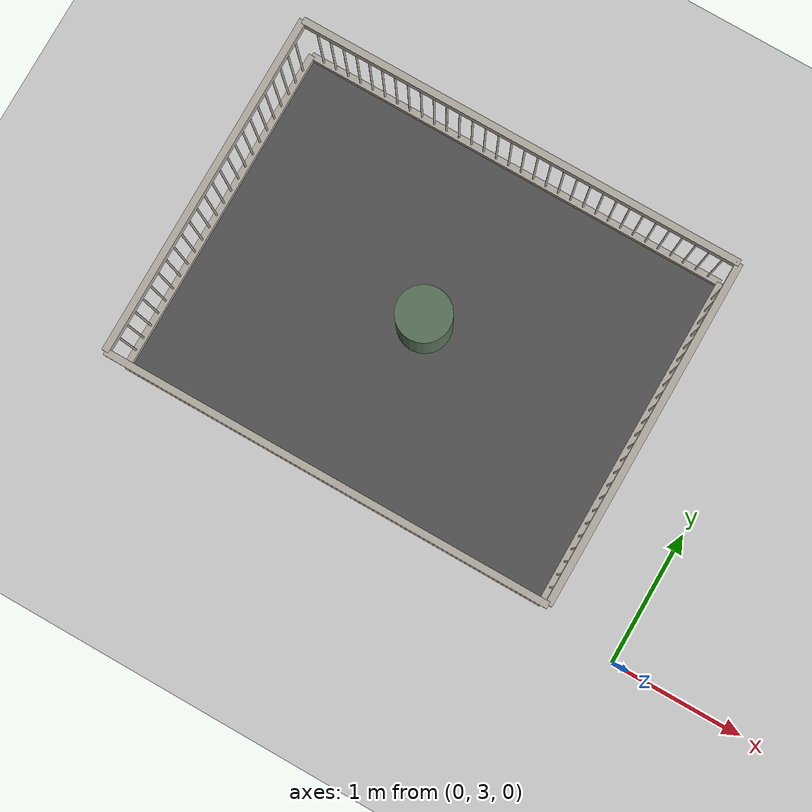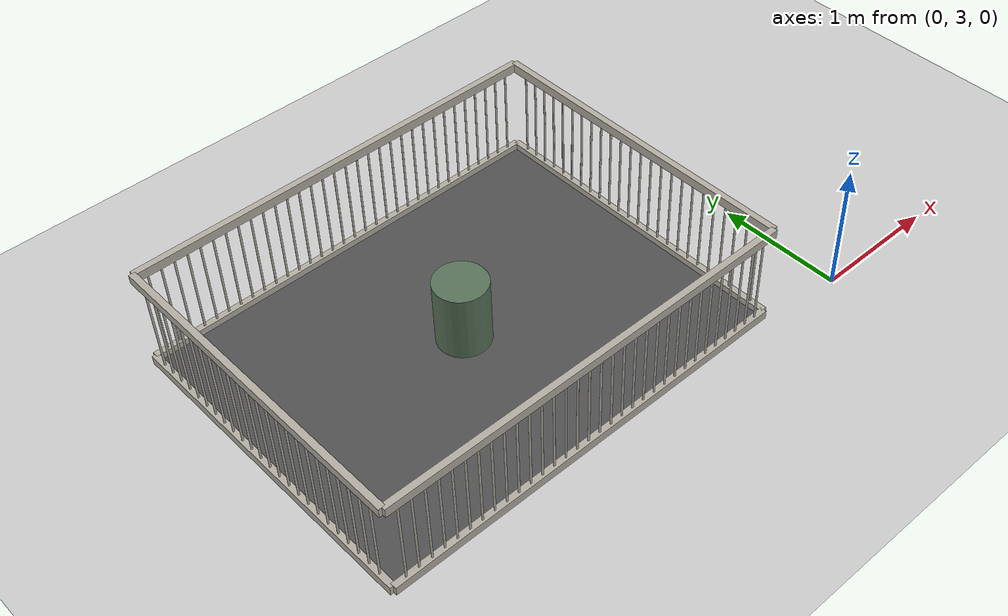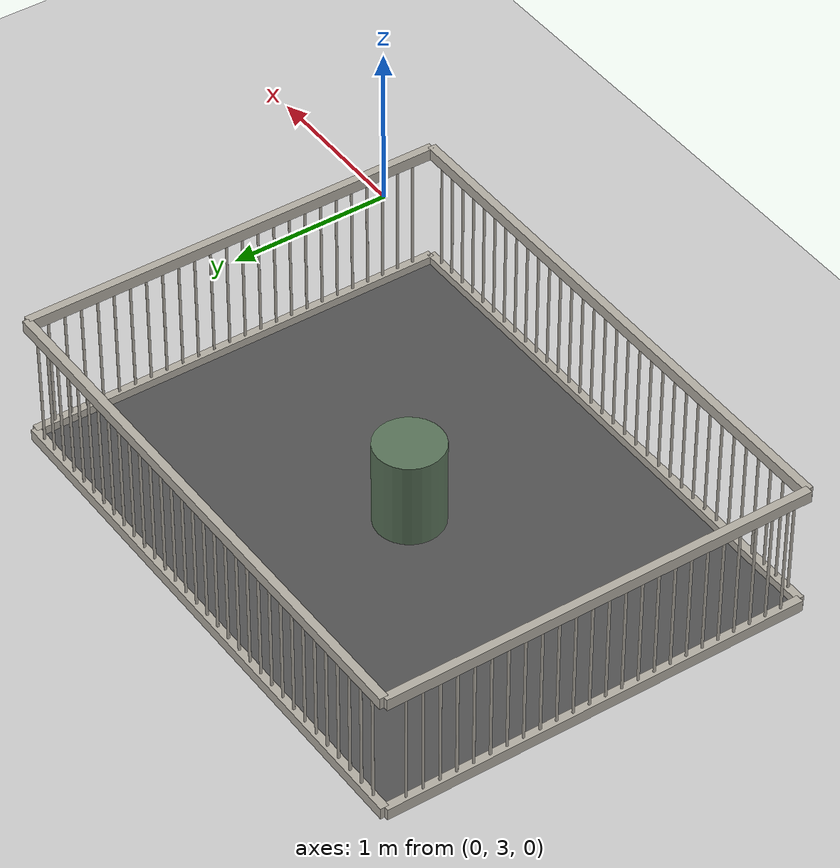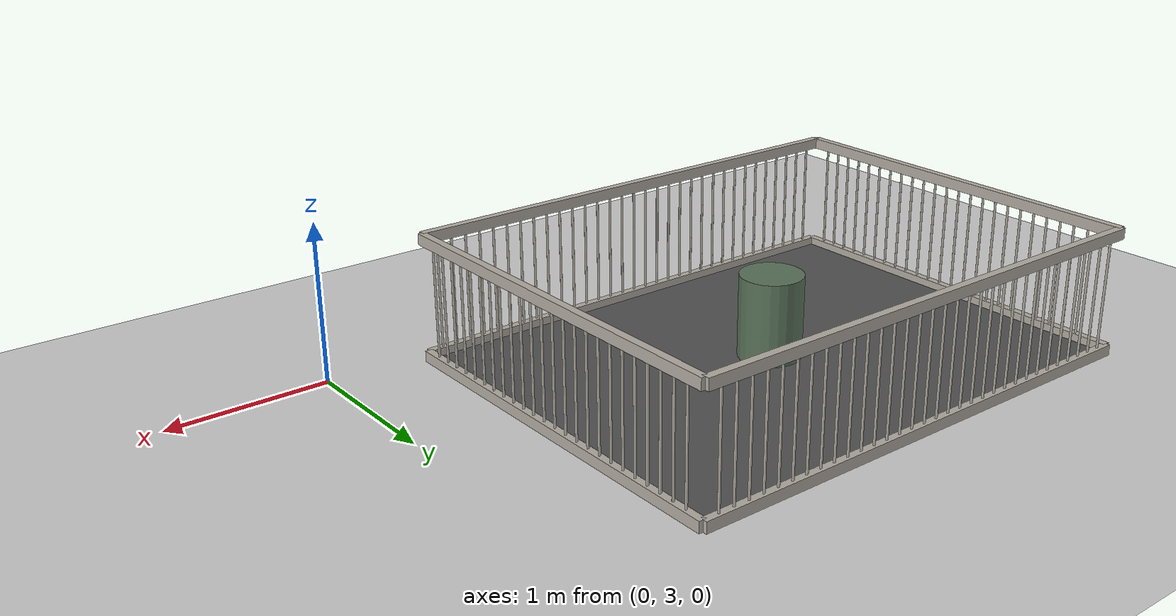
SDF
<sdf version="1.9">
 <world name="pig_pen_16units_world">
  <model name="ground_plane">
   <static>true</static>
   <link name="link">
    <collision name="collision">
     <geometry><plane><normal>0 0 1</normal><size>30 30</size></plane></geometry>
     <surface><friction><ode><mu>1.0</mu><mu2>1.0</mu2></ode></friction></surface>
    </collision>
    <visual name="visual">
     <geometry><plane><normal>0 0 1</normal><size>30 30</size></plane></geometry>
     <material>
      <ambient>0.8 0.8 0.8 1</ambient>
      <diffuse>0.8 0.8 0.8 1</diffuse>
      <specular>0.2 0.2 0.2 1</specular>
     </material>
    </visual>
   </link>
  </model>
  <model name="pen5">
   <pose>-2.275 4.385 0 0 0 0</pose>
   <static>true</static>
   <link name="floor">
    <pose>0 0 0.01 0 0 0</pose>
    <collision name="collision"><geometry><box><size>3.30 2.55 0.02</size></box></geometry></collision>
    <visual name="visual">
     <geometry><box><size>3.30 2.55 0.02</size></box></geometry>
     <material>
      <ambient>0.25 0.25 0.25 1</ambient>
      <diffuse>0.32 0.32 0.32 1</diffuse>
      <specular>0.05 0.05 0.05 1</specular>
     </material>
    </visual>
   </link>
   <link name="left_wall">
    <pose>0 1.275 0.415 0 0 0</pose>
    <collision name="top_rail_col">
     <pose>0 0 0.38 0 0 0</pose>
     <geometry><box><size>3.30 0.05 0.07</size></box></geometry>
    </collision>
    <visual name="top_rail_vis">
     <pose>0 0 0.38 0 0 0</pose>
     <geometry><box><size>3.30 0.05 0.07</size></box></geometry>
     <material><ambient>0.70 0.68 0.64 1</ambient><diffuse>0.70 0.68 0.64 1</diffuse></material>
    </visual>
    <collision name="bottom_rail_col">
     <pose>0 0 -0.38 0 0 0</pose>
     <geometry><box><size>3.30 0.05 0.07</size></box></geometry>
    </collision>
    <visual name="bottom_rail_vis">
     <pose>0 0 -0.38 0 0 0</pose>
     <geometry><box><size>3.30 0.05 0.07</size></box></geometry>
     <material><ambient>0.70 0.68 0.64 1</ambient><diffuse>0.70 0.68 0.64 1</diffuse></material>
    </visual>
    <collision name="bar_01_col">
     <pose>-1.55 0 0 0 0 0</pose>
     <geometry><cylinder><radius>0.0075</radius><length>0.69</length></cylinder></geometry>
    </collision>
    <visual name="bar_01_vis">
     <pose>-1.55 0 0 0 0 0</pose>
     <geometry><cylinder><radius>0.0075</radius><length>0.69</length></cylinder></geometry>
     <material><ambient>0.70 0.68 0.64 1</ambient><diffuse>0.70 0.68 0.64 1</diffuse></material>
    </visual>
    <collision name="bar_02_col">
     <pose>-1.45 0 0 0 0 0</pose>
     <geometry><cylinder><radius>0.0075</radius><length>0.69</length></cylinder></geometry>
    </collision>
    <visual name="bar_02_vis">
     <pose>-1.45 0 0 0 0 0</pose>
     <geometry><cylinder><radius>0.0075</radius><length>0.69</length></cylinder></geometry>
     <material><ambient>0.70 0.68 0.64 1</ambient><diffuse>0.70 0.68 0.64 1</diffuse></material>
    </visual>
    <collision name="bar_03_col">
     <pose>-1.35 0 0 0 0 0</pose>
     <geometry><cylinder><radius>0.0075</radius><length>0.69</length></cylinder></geometry>
    </collision>
    <visual name="bar_03_vis">
     <pose>-1.35 0 0 0 0 0</pose>
     <geometry><cylinder><radius>0.0075</radius><length>0.69</length></cylinder></geometry>
     <material><ambient>0.70 0.68 0.64 1</ambient><diffuse>0.70 0.68 0.64 1</diffuse></material>
    </visual>
    <collision name="bar_04_col">
     <pose>-1.25 0 0 0 0 0</pose>
     <geometry><cylinder><radius>0.0075</radius><length>0.69</length></cylinder></geometry>
    </collision>
    <visual name="bar_04_vis">
     <pose>-1.25 0 0 0 0 0</pose>
     <geometry><cylinder><radius>0.0075</radius><length>0.69</length></cylinder></geometry>
     <material><ambient>0.70 0.68 0.64 1</ambient><diffuse>0.70 0.68 0.64 1</diffuse></material>
    </visual>
    <collision name="bar_05_col">
     <pose>-1.15 0 0 0 0 0</pose>
     <geometry><cylinder><radius>0.0075</radius><length>0.69</length></cylinder></geometry>
    </collision>
    <visual name="bar_05_vis">
     <pose>-1.15 0 0 0 0 0</pose>
     <geometry><cylinder><radius>0.0075</radius><length>0.69</length></cylinder></geometry>
     <material><ambient>0.70 0.68 0.64 1</ambient><diffuse>0.70 0.68 0.64 1</diffuse></material>
    </visual>
    <collision name="bar_06_col">
     <pose>-1.05 0 0 0 0 0</pose>
     <geometry><cylinder><radius>0.0075</radius><length>0.69</length></cylinder></geometry>
    </collision>
    <visual name="bar_06_vis">
     <pose>-1.05 0 0 0 0 0</pose>
     <geometry><cylinder><radius>0.0075</radius><length>0.69</length></cylinder></geometry>
     <material><ambient>0.70 0.68 0.64 1</ambient><diffuse>0.70 0.68 0.64 1</diffuse></material>
    </visual>
    <collision name="bar_07_col">
     <pose>-0.95 0 0 0 0 0</pose>
     <geometry><cylinder><radius>0.0075</radius><length>0.69</length></cylinder></geometry>
    </collision>
    <visual name="bar_07_vis">
     <pose>-0.95 0 0 0 0 0</pose>
     <geometry><cylinder><radius>0.0075</radius><length>0.69</length></cylinder></geometry>
     <material><ambient>0.70 0.68 0.64 1</ambient><diffuse>0.70 0.68 0.64 1</diffuse></material>
    </visual>
    <collision name="bar_08_col">
     <pose>-0.85 0 0 0 0 0</pose>
     <geometry><cylinder><radius>0.0075</radius><length>0.69</length></cylinder></geometry>
    </collision>
    <visual name="bar_08_vis">
     <pose>-0.85 0 0 0 0 0</pose>
     <geometry><cylinder><radius>0.0075</radius><length>0.69</length></cylinder></geometry>
     <material><ambient>0.70 0.68 0.64 1</ambient><diffuse>0.70 0.68 0.64 1</diffuse></material>
    </visual>
    <collision name="bar_09_col">
     <pose>-0.75 0 0 0 0 0</pose>
     <geometry><cylinder><radius>0.0075</radius><length>0.69</length></cylinder></geometry>
    </collision>
    <visual name="bar_09_vis">
     <pose>-0.75 0 0 0 0 0</pose>
     <geometry><cylinder><radius>0.0075</radius><length>0.69</length></cylinder></geometry>
     <material><ambient>0.70 0.68 0.64 1</ambient><diffuse>0.70 0.68 0.64 1</diffuse></material>
    </visual>
    <collision name="bar_10_col">
     <pose>-0.65 0 0 0 0 0</pose>
     <geometry><cylinder><radius>0.0075</radius><length>0.69</length></cylinder></geometry>
    </collision>
    <visual name="bar_10_vis">
     <pose>-0.65 0 0 0 0 0</pose>
     <geometry><cylinder><radius>0.0075</radius><length>0.69</length></cylinder></geometry>
     <material><ambient>0.70 0.68 0.64 1</ambient><diffuse>0.70 0.68 0.64 1</diffuse></material>
    </visual>
    <collision name="bar_11_col">
     <pose>-0.55 0 0 0 0 0</pose>
     <geometry><cylinder><radius>0.0075</radius><length>0.69</length></cylinder></geometry>
    </collision>
    <visual name="bar_11_vis">
     <pose>-0.55 0 0 0 0 0</pose>
     <geometry><cylinder><radius>0.0075</radius><length>0.69</length></cylinder></geometry>
     <material><ambient>0.70 0.68 0.64 1</ambient><diffuse>0.70 0.68 0.64 1</diffuse></material>
    </visual>
    <collision name="bar_12_col">
     <pose>-0.45 0 0 0 0 0</pose>
     <geometry><cylinder><radius>0.0075</radius><length>0.69</length></cylinder></geometry>
    </collision>
    <visual name="bar_12_vis">
     <pose>-0.45 0 0 0 0 0</pose>
     <geometry><cylinder><radius>0.0075</radius><length>0.69</length></cylinder></geometry>
     <material><ambient>0.70 0.68 0.64 1</ambient><diffuse>0.70 0.68 0.64 1</diffuse></material>
    </visual>
    <collision name="bar_13_col">
     <pose>-0.35 0 0 0 0 0</pose>
     <geometry><cylinder><radius>0.0075</radius><length>0.69</length></cylinder></geometry>
    </collision>
    <visual name="bar_13_vis">
     <pose>-0.35 0 0 0 0 0</pose>
     <geometry><cylinder><radius>0.0075</radius><length>0.69</length></cylinder></geometry>
     <material><ambient>0.70 0.68 0.64 1</ambient><diffuse>0.70 0.68 0.64 1</diffuse></material>
    </visual>
    <collision name="bar_14_col">
     <pose>-0.25 0 0 0 0 0</pose>
     <geometry><cylinder><radius>0.0075</radius><length>0.69</length></cylinder></geometry>
    </collision>
    <visual name="bar_14_vis">
     <pose>-0.25 0 0 0 0 0</pose>
     <geometry><cylinder><radius>0.0075</radius><length>0.69</length></cylinder></geometry>
     <material><ambient>0.70 0.68 0.64 1</ambient><diffuse>0.70 0.68 0.64 1</diffuse></material>
    </visual>
    <collision name="bar_15_col">
     <pose>-0.15 0 0 0 0 0</pose>
     <geometry><cylinder><radius>0.0075</radius><length>0.69</length></cylinder></geometry>
    </collision>
    <visual name="bar_15_vis">
     <pose>-0.15 0 0 0 0 0</pose>
     <geometry><cylinder><radius>0.0075</radius><length>0.69</length></cylinder></geometry>
     <material><ambient>0.70 0.68 0.64 1</ambient><diffuse>0.70 0.68 0.64 1</diffuse></material>
    </visual>
    <collision name="bar_16_col">
     <pose>-0.05 0 0 0 0 0</pose>
     <geometry><cylinder><radius>0.0075</radius><length>0.69</length></cylinder></geometry>
    </collision>
    <visual name="bar_16_vis">
     <pose>-0.05 0 0 0 0 0</pose>
     <geometry><cylinder><radius>0.0075</radius><length>0.69</length></cylinder></geometry>
     <material><ambient>0.70 0.68 0.64 1</ambient><diffuse>0.70 0.68 0.64 1</diffuse></material>
    </visual>
    <collision name="bar_17_col">
     <pose>0.05 0 0 0 0 0</pose>
     <geometry><cylinder><radius>0.0075</radius><length>0.69</length></cylinder></geometry>
    </collision>
    <visual name="bar_17_vis">
     <pose>0.05 0 0 0 0 0</pose>
     <geometry><cylinder><radius>0.0075</radius><length>0.69</length></cylinder></geometry>
     <material><ambient>0.70 0.68 0.64 1</ambient><diffuse>0.70 0.68 0.64 1</diffuse></material>
    </visual>
    <collision name="bar_18_col">
     <pose>0.15 0 0 0 0 0</pose>
     <geometry><cylinder><radius>0.0075</radius><length>0.69</length></cylinder></geometry>
    </collision>
    <visual name="bar_18_vis">
     <pose>0.15 0 0 0 0 0</pose>
     <geometry><cylinder><radius>0.0075</radius><length>0.69</length></cylinder></geometry>
     <material><ambient>0.70 0.68 0.64 1</ambient><diffuse>0.70 0.68 0.64 1</diffuse></material>
    </visual>
    <collision name="bar_19_col">
     <pose>0.25 0 0 0 0 0</pose>
     <geometry><cylinder><radius>0.0075</radius><length>0.69</length></cylinder></geometry>
    </collision>
    <visual name="bar_19_vis">
     <pose>0.25 0 0 0 0 0</pose>
     <geometry><cylinder><radius>0.0075</radius><length>0.69</length></cylinder></geometry>
     <material><ambient>0.70 0.68 0.64 1</ambient><diffuse>0.70 0.68 0.64 1</diffuse></material>
    </visual>
    <collision name="bar_20_col">
     <pose>0.35 0 0 0 0 0</pose>
     <geometry><cylinder><radius>0.0075</radius><length>0.69</length></cylinder></geometry>
    </collision>
    <visual name="bar_20_vis">
     <pose>0.35 0 0 0 0 0</pose>
     <geometry><cylinder><radius>0.0075</radius><length>0.69</length></cylinder></geometry>
     <material><ambient>0.70 0.68 0.64 1</ambient><diffuse>0.70 0.68 0.64 1</diffuse></material>
    </visual>
    <collision name="bar_21_col">
     <pose>0.45 0 0 0 0 0</pose>
     <geometry><cylinder><radius>0.0075</radius><length>0.69</length></cylinder></geometry>
    </collision>
    <visual name="bar_21_vis">
     <pose>0.45 0 0 0 0 0</pose>
     <geometry><cylinder><radius>0.0075</radius><length>0.69</length></cylinder></geometry>
     <material><ambient>0.70 0.68 0.64 1</ambient><diffuse>0.70 0.68 0.64 1</diffuse></material>
    </visual>
    <collision name="bar_22_col">
     <pose>0.55 0 0 0 0 0</pose>
     <geometry><cylinder><radius>0.0075</radius><length>0.69</length></cylinder></geometry>
    </collision>
    <visual name="bar_22_vis">
     <pose>0.55 0 0 0 0 0</pose>
     <geometry><cylinder><radius>0.0075</radius><length>0.69</length></cylinder></geometry>
     <material><ambient>0.70 0.68 0.64 1</ambient><diffuse>0.70 0.68 0.64 1</diffuse></material>
    </visual>
    <collision name="bar_23_col">
     <pose>0.65 0 0 0 0 0</pose>
     <geometry><cylinder><radius>0.0075</radius><length>0.69</length></cylinder></geometry>
    </collision>
    <visual name="bar_23_vis">
     <pose>0.65 0 0 0 0 0</pose>
     <geometry><cylinder><radius>0.0075</radius><length>0.69</length></cylinder></geometry>
     <material><ambient>0.70 0.68 0.64 1</ambient><diffuse>0.70 0.68 0.64 1</diffuse></material>
    </visual>
    <collision name="bar_24_col">
     <pose>0.75 0 0 0 0 0</pose>
     <geometry><cylinder><radius>0.0075</radius><length>0.69</length></cylinder></geometry>
    </collision>
    <visual name="bar_24_vis">
     <pose>0.75 0 0 0 0 0</pose>
     <geometry><cylinder><radius>0.0075</radius><length>0.69</length></cylinder></geometry>
     <material><ambient>0.70 0.68 0.64 1</ambient><diffuse>0.70 0.68 0.64 1</diffuse></material>
    </visual>
    <collision name="bar_25_col">
     <pose>0.85 0 0 0 0 0</pose>
     <geometry><cylinder><radius>0.0075</radius><length>0.69</length></cylinder></geometry>
    </collision>
    <visual name="bar_25_vis">
     <pose>0.85 0 0 0 0 0</pose>
     <geometry><cylinder><radius>0.0075</radius><length>0.69</length></cylinder></geometry>
     <material><ambient>0.70 0.68 0.64 1</ambient><diffuse>0.70 0.68 0.64 1</diffuse></material>
    </visual>
    <collision name="bar_26_col">
     <pose>0.95 0 0 0 0 0</pose>
     <geometry><cylinder><radius>0.0075</radius><length>0.69</length></cylinder></geometry>
    </collision>
    <visual name="bar_26_vis">
     <pose>0.95 0 0 0 0 0</pose>
     <geometry><cylinder><radius>0.0075</radius><length>0.69</length></cylinder></geometry>
     <material><ambient>0.70 0.68 0.64 1</ambient><diffuse>0.70 0.68 0.64 1</diffuse></material>
    </visual>
    <collision name="bar_27_col">
     <pose>1.05 0 0 0 0 0</pose>
     <geometry><cylinder><radius>0.0075</radius><length>0.69</length></cylinder></geometry>
    </collision>
    <visual name="bar_27_vis">
     <pose>1.05 0 0 0 0 0</pose>
     <geometry><cylinder><radius>0.0075</radius><length>0.69</length></cylinder></geometry>
     <material><ambient>0.70 0.68 0.64 1</ambient><diffuse>0.70 0.68 0.64 1</diffuse></material>
    </visual>
    <collision name="bar_28_col">
     <pose>1.15 0 0 0 0 0</pose>
     <geometry><cylinder><radius>0.0075</radius><length>0.69</length></cylinder></geometry>
    </collision>
    <visual name="bar_28_vis">
     <pose>1.15 0 0 0 0 0</pose>
     <geometry><cylinder><radius>0.0075</radius><length>0.69</length></cylinder></geometry>
     <material><ambient>0.70 0.68 0.64 1</ambient><diffuse>0.70 0.68 0.64 1</diffuse></material>
    </visual>
    <collision name="bar_29_col">
     <pose>1.25 0 0 0 0 0</pose>
     <geometry><cylinder><radius>0.0075</radius><length>0.69</length></cylinder></geometry>
    </collision>
    <visual name="bar_29_vis">
     <pose>1.25 0 0 0 0 0</pose>
     <geometry><cylinder><radius>0.0075</radius><length>0.69</length></cylinder></geometry>
     <material><ambient>0.70 0.68 0.64 1</ambient><diffuse>0.70 0.68 0.64 1</diffuse></material>
    </visual>
    <collision name="bar_30_col">
     <pose>1.35 0 0 0 0 0</pose>
     <geometry><cylinder><radius>0.0075</radius><length>0.69</length></cylinder></geometry>
    </collision>
    <visual name="bar_30_vis">
     <pose>1.35 0 0 0 0 0</pose>
     <geometry><cylinder><radius>0.0075</radius><length>0.69</length></cylinder></geometry>
     <material><ambient>0.70 0.68 0.64 1</ambient><diffuse>0.70 0.68 0.64 1</diffuse></material>
    </visual>
    <collision name="bar_31_col">
     <pose>1.45 0 0 0 0 0</pose>
     <geometry><cylinder><radius>0.0075</radius><length>0.69</length></cylinder></geometry>
    </collision>
    <visual name="bar_31_vis">
     <pose>1.45 0 0 0 0 0</pose>
     <geometry><cylinder><radius>0.0075</radius><length>0.69</length></cylinder></geometry>
     <material><ambient>0.70 0.68 0.64 1</ambient><diffuse>0.70 0.68 0.64 1</diffuse></material>
    </visual>
    <collision name="bar_32_col">
     <pose>1.55 0 0 0 0 0</pose>
     <geometry><cylinder><radius>0.0075</radius><length>0.69</length></cylinder></geometry>
    </collision>
    <visual name="bar_32_vis">
     <pose>1.55 0 0 0 0 0</pose>
     <geometry><cylinder><radius>0.0075</radius><length>0.69</length></cylinder></geometry>
     <material><ambient>0.70 0.68 0.64 1</ambient><diffuse>0.70 0.68 0.64 1</diffuse></material>
    </visual>
   </link>
   <link name="right_wall">
    <pose>0 -1.275 0.415 0 0 0</pose>
    <collision name="top_rail_col">
     <pose>0 0 0.38 0 0 0</pose>
     <geometry><box><size>3.30 0.05 0.07</size></box></geometry>
    </collision>
    <visual name="top_rail_vis">
     <pose>0 0 0.38 0 0 0</pose>
     <geometry><box><size>3.30 0.05 0.07</size></box></geometry>
     <material><ambient>0.70 0.68 0.64 1</ambient><diffuse>0.70 0.68 0.64 1</diffuse></material>
    </visual>
    <collision name="bottom_rail_col">
     <pose>0 0 -0.38 0 0 0</pose>
     <geometry><box><size>3.30 0.05 0.07</size></box></geometry>
    </collision>
    <visual name="bottom_rail_vis">
     <pose>0 0 -0.38 0 0 0</pose>
     <geometry><box><size>3.30 0.05 0.07</size></box></geometry>
     <material><ambient>0.70 0.68 0.64 1</ambient><diffuse>0.70 0.68 0.64 1</diffuse></material>
    </visual>
    <collision name="bar_01_col">
     <pose>-1.55 0 0 0 0 0</pose>
     <geometry><cylinder><radius>0.0075</radius><length>0.69</length></cylinder></geometry>
    </collision>
    <visual name="bar_01_vis">
     <pose>-1.55 0 0 0 0 0</pose>
     <geometry><cylinder><radius>0.0075</radius><length>0.69</length></cylinder></geometry>
     <material><ambient>0.70 0.68 0.64 1</ambient><diffuse>0.70 0.68 0.64 1</diffuse></material>
    </visual>
    <collision name="bar_02_col">
     <pose>-1.45 0 0 0 0 0</pose>
     <geometry><cylinder><radius>0.0075</radius><length>0.69</length></cylinder></geometry>
    </collision>
    <visual name="bar_02_vis">
     <pose>-1.45 0 0 0 0 0</pose>
     <geometry><cylinder><radius>0.0075</radius><length>0.69</length></cylinder></geometry>
     <material><ambient>0.70 0.68 0.64 1</ambient><diffuse>0.70 0.68 0.64 1</diffuse></material>
    </visual>
    <collision name="bar_03_col">
     <pose>-1.35 0 0 0 0 0</pose>
     <geometry><cylinder><radius>0.0075</radius><length>0.69</length></cylinder></geometry>
    </collision>
    <visual name="bar_03_vis">
     <pose>-1.35 0 0 0 0 0</pose>
     <geometry><cylinder><radius>0.0075</radius><length>0.69</length></cylinder></geometry>
     <material><ambient>0.70 0.68 0.64 1</ambient><diffuse>0.70 0.68 0.64 1</diffuse></material>
    </visual>
    <collision name="bar_04_col">
     <pose>-1.25 0 0 0 0 0</pose>
     <geometry><cylinder><radius>0.0075</radius><length>0.69</length></cylinder></geometry>
    </collision>
    <visual name="bar_04_vis">
     <pose>-1.25 0 0 0 0 0</pose>
     <geometry><cylinder><radius>0.0075</radius><length>0.69</length></cylinder></geometry>
     <material><ambient>0.70 0.68 0.64 1</ambient><diffuse>0.70 0.68 0.64 1</diffuse></material>
    </visual>
    <collision name="bar_05_col">
     <pose>-1.15 0 0 0 0 0</pose>
     <geometry><cylinder><radius>0.0075</radius><length>0.69</length></cylinder></geometry>
    </collision>
    <visual name="bar_05_vis">
     <pose>-1.15 0 0 0 0 0</pose>
     <geometry><cylinder><radius>0.0075</radius><length>0.69</length></cylinder></geometry>
     <material><ambient>0.70 0.68 0.64 1</ambient><diffuse>0.70 0.68 0.64 1</diffuse></material>
    </visual>
    <collision name="bar_06_col">
     <pose>-1.05 0 0 0 0 0</pose>
     <geometry><cylinder><radius>0.0075</radius><length>0.69</length></cylinder></geometry>
    </collision>
    <visual name="bar_06_vis">
     <pose>-1.05 0 0 0 0 0</pose>
     <geometry><cylinder><radius>0.0075</radius><length>0.69</length></cylinder></geometry>
     <material><ambient>0.70 0.68 0.64 1</ambient><diffuse>0.70 0.68 0.64 1</diffuse></material>
    </visual>
    <collision name="bar_07_col">
     <pose>-0.95 0 0 0 0 0</pose>
     <geometry><cylinder><radius>0.0075</radius><length>0.69</length></cylinder></geometry>
    </collision>
    <visual name="bar_07_vis">
     <pose>-0.95 0 0 0 0 0</pose>
     <geometry><cylinder><radius>0.0075</radius><length>0.69</length></cylinder></geometry>
     <material><ambient>0.70 0.68 0.64 1</ambient><diffuse>0.70 0.68 0.64 1</diffuse></material>
    </visual>
    <collision name="bar_08_col">
     <pose>-0.85 0 0 0 0 0</pose>
     <geometry><cylinder><radius>0.0075</radius><length>0.69</length></cylinder></geometry>
    </collision>
    <visual name="bar_08_vis">
     <pose>-0.85 0 0 0 0 0</pose>
     <geometry><cylinder><radius>0.0075</radius><length>0.69</length></cylinder></geometry>
     <material><ambient>0.70 0.68 0.64 1</ambient><diffuse>0.70 0.68 0.64 1</diffuse></material>
    </visual>
    <collision name="bar_09_col">
     <pose>-0.75 0 0 0 0 0</pose>
     <geometry><cylinder><radius>0.0075</radius><length>0.69</length></cylinder></geometry>
    </collision>
    <visual name="bar_09_vis">
     <pose>-0.75 0 0 0 0 0</pose>
     <geometry><cylinder><radius>0.0075</radius><length>0.69</length></cylinder></geometry>
     <material><ambient>0.70 0.68 0.64 1</ambient><diffuse>0.70 0.68 0.64 1</diffuse></material>
    </visual>
    <collision name="bar_10_col">
     <pose>-0.65 0 0 0 0 0</pose>
     <geometry><cylinder><radius>0.0075</radius><length>0.69</length></cylinder></geometry>
    </collision>
    <visual name="bar_10_vis">
     <pose>-0.65 0 0 0 0 0</pose>
     <geometry><cylinder><radius>0.0075</radius><length>0.69</length></cylinder></geometry>
     <material><ambient>0.70 0.68 0.64 1</ambient><diffuse>0.70 0.68 0.64 1</diffuse></material>
    </visual>
    <collision name="bar_11_col">
     <pose>-0.55 0 0 0 0 0</pose>
     <geometry><cylinder><radius>0.0075</radius><length>0.69</length></cylinder></geometry>
    </collision>
    <visual name="bar_11_vis">
     <pose>-0.55 0 0 0 0 0</pose>
     <geometry><cylinder><radius>0.0075</radius><length>0.69</length></cylinder></geometry>
     <material><ambient>0.70 0.68 0.64 1</ambient><diffuse>0.70 0.68 0.64 1</diffuse></material>
    </visual>
    <collision name="bar_12_col">
     <pose>-0.45 0 0 0 0 0</pose>
     <geometry><cylinder><radius>0.0075</radius><length>0.69</length></cylinder></geometry>
    </collision>
    <visual name="bar_12_vis">
     <pose>-0.45 0 0 0 0 0</pose>
     <geometry><cylinder><radius>0.0075</radius><length>0.69</length></cylinder></geometry>
     <material><ambient>0.70 0.68 0.64 1</ambient><diffuse>0.70 0.68 0.64 1</diffuse></material>
    </visual>
    <collision name="bar_13_col">
     <pose>-0.35 0 0 0 0 0</pose>
     <geometry><cylinder><radius>0.0075</radius><length>0.69</length></cylinder></geometry>
    </collision>
    <visual name="bar_13_vis">
     <pose>-0.35 0 0 0 0 0</pose>
     <geometry><cylinder><radius>0.0075</radius><length>0.69</length></cylinder></geometry>
     <material><ambient>0.70 0.68 0.64 1</ambient><diffuse>0.70 0.68 0.64 1</diffuse></material>
    </visual>
    <collision name="bar_14_col">
     <pose>-0.25 0 0 0 0 0</pose>
     <geometry><cylinder><radius>0.0075</radius><length>0.69</length></cylinder></geometry>
    </collision>
    <visual name="bar_14_vis">
     <pose>-0.25 0 0 0 0 0</pose>
     <geometry><cylinder><radius>0.0075</radius><length>0.69</length></cylinder></geometry>
     <material><ambient>0.70 0.68 0.64 1</ambient><diffuse>0.70 0.68 0.64 1</diffuse></material>
    </visual>
    <collision name="bar_15_col">
     <pose>-0.15 0 0 0 0 0</pose>
     <geometry><cylinder><radius>0.0075</radius><length>0.69</length></cylinder></geometry>
    </collision>
    <visual name="bar_15_vis">
     <pose>-0.15 0 0 0 0 0</pose>
     <geometry><cylinder><radius>0.0075</radius><length>0.69</length></cylinder></geometry>
     <material><ambient>0.70 0.68 0.64 1</ambient><diffuse>0.70 0.68 0.64 1</diffuse></material>
    </visual>
    <collision name="bar_16_col">
     <pose>-0.05 0 0 0 0 0</pose>
     <geometry><cylinder><radius>0.0075</radius><length>0.69</length></cylinder></geometry>
    </collision>
    <visual name="bar_16_vis">
     <pose>-0.05 0 0 0 0 0</pose>
     <geometry><cylinder><radius>0.0075</radius><length>0.69</length></cylinder></geometry>
     <material><ambient>0.70 0.68 0.64 1</ambient><diffuse>0.70 0.68 0.64 1</diffuse></material>
    </visual>
    <collision name="bar_17_col">
     <pose>0.05 0 0 0 0 0</pose>
     <geometry><cylinder><radius>0.0075</radius><length>0.69</length></cylinder></geometry>
    </collision>
    <visual name="bar_17_vis">
     <pose>0.05 0 0 0 0 0</pose>
     <geometry><cylinder><radius>0.0075</radius><length>0.69</length></cylinder></geometry>
     <material><ambient>0.70 0.68 0.64 1</ambient><diffuse>0.70 0.68 0.64 1</diffuse></material>
    </visual>
    <collision name="bar_18_col">
     <pose>0.15 0 0 0 0 0</pose>
     <geometry><cylinder><radius>0.0075</radius><length>0.69</length></cylinder></geometry>
    </collision>
    <visual name="bar_18_vis">
     <pose>0.15 0 0 0 0 0</pose>
     <geometry><cylinder><radius>0.0075</radius><length>0.69</length></cylinder></geometry>
     <material><ambient>0.70 0.68 0.64 1</ambient><diffuse>0.70 0.68 0.64 1</diffuse></material>
    </visual>
    <collision name="bar_19_col">
     <pose>0.25 0 0 0 0 0</pose>
     <geometry><cylinder><radius>0.0075</radius><length>0.69</length></cylinder></geometry>
    </collision>
    <visual name="bar_19_vis">
     <pose>0.25 0 0 0 0 0</pose>
     <geometry><cylinder><radius>0.0075</radius><length>0.69</length></cylinder></geometry>
     <material><ambient>0.70 0.68 0.64 1</ambient><diffuse>0.70 0.68 0.64 1</diffuse></material>
    </visual>
    <collision name="bar_20_col">
     <pose>0.35 0 0 0 0 0</pose>
     <geometry><cylinder><radius>0.0075</radius><length>0.69</length></cylinder></geometry>
    </collision>
    <visual name="bar_20_vis">
     <pose>0.35 0 0 0 0 0</pose>
     <geometry><cylinder><radius>0.0075</radius><length>0.69</length></cylinder></geometry>
     <material><ambient>0.70 0.68 0.64 1</ambient><diffuse>0.70 0.68 0.64 1</diffuse></material>
    </visual>
    <collision name="bar_21_col">
     <pose>0.45 0 0 0 0 0</pose>
     <geometry><cylinder><radius>0.0075</radius><length>0.69</length></cylinder></geometry>
    </collision>
    <visual name="bar_21_vis">
     <pose>0.45 0 0 0 0 0</pose>
     <geometry><cylinder><radius>0.0075</radius><length>0.69</length></cylinder></geometry>
     <material><ambient>0.70 0.68 0.64 1</ambient><diffuse>0.70 0.68 0.64 1</diffuse></material>
    </visual>
    <collision name="bar_22_col">
     <pose>0.55 0 0 0 0 0</pose>
     <geometry><cylinder><radius>0.0075</radius><length>0.69</length></cylinder></geometry>
    </collision>
    <visual name="bar_22_vis">
     <pose>0.55 0 0 0 0 0</pose>
     <geometry><cylinder><radius>0.0075</radius><length>0.69</length></cylinder></geometry>
     <material><ambient>0.70 0.68 0.64 1</ambient><diffuse>0.70 0.68 0.64 1</diffuse></material>
    </visual>
    <collision name="bar_23_col">
     <pose>0.65 0 0 0 0 0</pose>
     <geometry><cylinder><radius>0.0075</radius><length>0.69</length></cylinder></geometry>
    </collision>
    <visual name="bar_23_vis">
     <pose>0.65 0 0 0 0 0</pose>
     <geometry><cylinder><radius>0.0075</radius><length>0.69</length></cylinder></geometry>
     <material><ambient>0.70 0.68 0.64 1</ambient><diffuse>0.70 0.68 0.64 1</diffuse></material>
    </visual>
    <collision name="bar_24_col">
     <pose>0.75 0 0 0 0 0</pose>
     <geometry><cylinder><radius>0.0075</radius><length>0.69</length></cylinder></geometry>
    </collision>
    <visual name="bar_24_vis">
     <pose>0.75 0 0 0 0 0</pose>
     <geometry><cylinder><radius>0.0075</radius><length>0.69</length></cylinder></geometry>
     <material><ambient>0.70 0.68 0.64 1</ambient><diffuse>0.70 0.68 0.64 1</diffuse></material>
    </visual>
    <collision name="bar_25_col">
     <pose>0.85 0 0 0 0 0</pose>
     <geometry><cylinder><radius>0.0075</radius><length>0.69</length></cylinder></geometry>
    </collision>
    <visual name="bar_25_vis">
     <pose>0.85 0 0 0 0 0</pose>
     <geometry><cylinder><radius>0.0075</radius><length>0.69</length></cylinder></geometry>
     <material><ambient>0.70 0.68 0.64 1</ambient><diffuse>0.70 0.68 0.64 1</diffuse></material>
    </visual>
    <collision name="bar_26_col">
     <pose>0.95 0 0 0 0 0</pose>
     <geometry><cylinder><radius>0.0075</radius><length>0.69</length></cylinder></geometry>
    </collision>
    <visual name="bar_26_vis">
     <pose>0.95 0 0 0 0 0</pose>
     <geometry><cylinder><radius>0.0075</radius><length>0.69</length></cylinder></geometry>
     <material><ambient>0.70 0.68 0.64 1</ambient><diffuse>0.70 0.68 0.64 1</diffuse></material>
    </visual>
    <collision name="bar_27_col">
     <pose>1.05 0 0 0 0 0</pose>
     <geometry><cylinder><radius>0.0075</radius><length>0.69</length></cylinder></geometry>
    </collision>
    <visual name="bar_27_vis">
     <pose>1.05 0 0 0 0 0</pose>
     <geometry><cylinder><radius>0.0075</radius><length>0.69</length></cylinder></geometry>
     <material><ambient>0.70 0.68 0.64 1</ambient><diffuse>0.70 0.68 0.64 1</diffuse></material>
    </visual>
    <collision name="bar_28_col">
     <pose>1.15 0 0 0 0 0</pose>
     <geometry><cylinder><radius>0.0075</radius><length>0.69</length></cylinder></geometry>
    </collision>
    <visual name="bar_28_vis">
     <pose>1.15 0 0 0 0 0</pose>
     <geometry><cylinder><radius>0.0075</radius><length>0.69</length></cylinder></geometry>
     <material><ambient>0.70 0.68 0.64 1</ambient><diffuse>0.70 0.68 0.64 1</diffuse></material>
    </visual>
    <collision name="bar_29_col">
     <pose>1.25 0 0 0 0 0</pose>
     <geometry><cylinder><radius>0.0075</radius><length>0.69</length></cylinder></geometry>
    </collision>
    <visual name="bar_29_vis">
     <pose>1.25 0 0 0 0 0</pose>
     <geometry><cylinder><radius>0.0075</radius><length>0.69</length></cylinder></geometry>
     <material><ambient>0.70 0.68 0.64 1</ambient><diffuse>0.70 0.68 0.64 1</diffuse></material>
    </visual>
    <collision name="bar_30_col">
     <pose>1.35 0 0 0 0 0</pose>
     <geometry><cylinder><radius>0.0075</radius><length>0.69</length></cylinder></geometry>
    </collision>
    <visual name="bar_30_vis">
     <pose>1.35 0 0 0 0 0</pose>
     <geometry><cylinder><radius>0.0075</radius><length>0.69</length></cylinder></geometry>
     <material><ambient>0.70 0.68 0.64 1</ambient><diffuse>0.70 0.68 0.64 1</diffuse></material>
    </visual>
    <collision name="bar_31_col">
     <pose>1.45 0 0 0 0 0</pose>
     <geometry><cylinder><radius>0.0075</radius><length>0.69</length></cylinder></geometry>
    </collision>
    <visual name="bar_31_vis">
     <pose>1.45 0 0 0 0 0</pose>
     <geometry><cylinder><radius>0.0075</radius><length>0.69</length></cylinder></geometry>
     <material><ambient>0.70 0.68 0.64 1</ambient><diffuse>0.70 0.68 0.64 1</diffuse></material>
    </visual>
    <collision name="bar_32_col">
     <pose>1.55 0 0 0 0 0</pose>
     <geometry><cylinder><radius>0.0075</radius><length>0.69</length></cylinder></geometry>
    </collision>
    <visual name="bar_32_vis">
     <pose>1.55 0 0 0 0 0</pose>
     <geometry><cylinder><radius>0.0075</radius><length>0.69</length></cylinder></geometry>
     <material><ambient>0.70 0.68 0.64 1</ambient><diffuse>0.70 0.68 0.64 1</diffuse></material>
    </visual>
   </link>
   <link name="back_wall">
    <pose>1.65 0 0.415 0 0 0</pose>
    <collision name="top_rail_col">
     <pose>0 0 0.38 0 0 0</pose>
     <geometry><box><size>0.05 2.55 0.07</size></box></geometry>
    </collision>
    <visual name="top_rail_vis">
     <pose>0 0 0.38 0 0 0</pose>
     <geometry><box><size>0.05 2.55 0.07</size></box></geometry>
     <material><ambient>0.70 0.68 0.64 1</ambient><diffuse>0.70 0.68 0.64 1</diffuse></material>
    </visual>
    <collision name="bottom_rail_col">
     <pose>0 0 -0.38 0 0 0</pose>
     <geometry><box><size>0.05 2.55 0.07</size></box></geometry>
    </collision>
    <visual name="bottom_rail_vis">
     <pose>0 0 -0.38 0 0 0</pose>
     <geometry><box><size>0.05 2.55 0.07</size></box></geometry>
     <material><ambient>0.70 0.68 0.64 1</ambient><diffuse>0.70 0.68 0.64 1</diffuse></material>
    </visual>
    <collision name="bar_01_col">
     <pose>0 -1.15 0 0 0 0</pose>
     <geometry><cylinder><radius>0.0075</radius><length>0.69</length></cylinder></geometry>
    </collision>
    <visual name="bar_01_vis">
     <pose>0 -1.15 0 0 0 0</pose>
     <geometry><cylinder><radius>0.0075</radius><length>0.69</length></cylinder></geometry>
     <material><ambient>0.70 0.68 0.64 1</ambient><diffuse>0.70 0.68 0.64 1</diffuse></material>
    </visual>
    <collision name="bar_02_col">
     <pose>0 -1.05 0 0 0 0</pose>
     <geometry><cylinder><radius>0.0075</radius><length>0.69</length></cylinder></geometry>
    </collision>
    <visual name="bar_02_vis">
     <pose>0 -1.05 0 0 0 0</pose>
     <geometry><cylinder><radius>0.0075</radius><length>0.69</length></cylinder></geometry>
     <material><ambient>0.70 0.68 0.64 1</ambient><diffuse>0.70 0.68 0.64 1</diffuse></material>
    </visual>
    <collision name="bar_03_col">
     <pose>0 -0.95 0 0 0 0</pose>
     <geometry><cylinder><radius>0.0075</radius><length>0.69</length></cylinder></geometry>
    </collision>
    <visual name="bar_03_vis">
     <pose>0 -0.95 0 0 0 0</pose>
     <geometry><cylinder><radius>0.0075</radius><length>0.69</length></cylinder></geometry>
     <material><ambient>0.70 0.68 0.64 1</ambient><diffuse>0.70 0.68 0.64 1</diffuse></material>
    </visual>
    <collision name="bar_04_col">
     <pose>0 -0.85 0 0 0 0</pose>
     <geometry><cylinder><radius>0.0075</radius><length>0.69</length></cylinder></geometry>
    </collision>
    <visual name="bar_04_vis">
     <pose>0 -0.85 0 0 0 0</pose>
     <geometry><cylinder><radius>0.0075</radius><length>0.69</length></cylinder></geometry>
     <material><ambient>0.70 0.68 0.64 1</ambient><diffuse>0.70 0.68 0.64 1</diffuse></material>
    </visual>
    <collision name="bar_05_col">
     <pose>0 -0.75 0 0 0 0</pose>
     <geometry><cylinder><radius>0.0075</radius><length>0.69</length></cylinder></geometry>
    </collision>
    <visual name="bar_05_vis">
     <pose>0 -0.75 0 0 0 0</pose>
     <geometry><cylinder><radius>0.0075</radius><length>0.69</length></cylinder></geometry>
     <material><ambient>0.70 0.68 0.64 1</ambient><diffuse>0.70 0.68 0.64 1</diffuse></material>
    </visual>
    <collision name="bar_06_col">
     <pose>0 -0.65 0 0 0 0</pose>
     <geometry><cylinder><radius>0.0075</radius><length>0.69</length></cylinder></geometry>
    </collision>
    <visual name="bar_06_vis">
     <pose>0 -0.65 0 0 0 0</pose>
     <geometry><cylinder><radius>0.0075</radius><length>0.69</length></cylinder></geometry>
     <material><ambient>0.70 0.68 0.64 1</ambient><diffuse>0.70 0.68 0.64 1</diffuse></material>
    </visual>
    <collision name="bar_07_col">
     <pose>0 -0.55 0 0 0 0</pose>
     <geometry><cylinder><radius>0.0075</radius><length>0.69</length></cylinder></geometry>
    </collision>
    <visual name="bar_07_vis">
     <pose>0 -0.55 0 0 0 0</pose>
     <geometry><cylinder><radius>0.0075</radius><length>0.69</length></cylinder></geometry>
     <material><ambient>0.70 0.68 0.64 1</ambient><diffuse>0.70 0.68 0.64 1</diffuse></material>
    </visual>
    <collision name="bar_08_col">
     <pose>0 -0.45 0 0 0 0</pose>
     <geometry><cylinder><radius>0.0075</radius><length>0.69</length></cylinder></geometry>
    </collision>
    <visual name="bar_08_vis">
     <pose>0 -0.45 0 0 0 0</pose>
     <geometry><cylinder><radius>0.0075</radius><length>0.69</length></cylinder></geometry>
     <material><ambient>0.70 0.68 0.64 1</ambient><diffuse>0.70 0.68 0.64 1</diffuse></material>
    </visual>
    <collision name="bar_09_col">
     <pose>0 -0.35 0 0 0 0</pose>
     <geometry><cylinder><radius>0.0075</radius><length>0.69</length></cylinder></geometry>
    </collision>
    <visual name="bar_09_vis">
     <pose>0 -0.35 0 0 0 0</pose>
     <geometry><cylinder><radius>0.0075</radius><length>0.69</length></cylinder></geometry>
     <material><ambient>0.70 0.68 0.64 1</ambient><diffuse>0.70 0.68 0.64 1</diffuse></material>
    </visual>
    <collision name="bar_10_col">
     <pose>0 -0.25 0 0 0 0</pose>
     <geometry><cylinder><radius>0.0075</radius><length>0.69</length></cylinder></geometry>
    </collision>
    <visual name="bar_10_vis">
     <pose>0 -0.25 0 0 0 0</pose>
     <geometry><cylinder><radius>0.0075</radius><length>0.69</length></cylinder></geometry>
     <material><ambient>0.70 0.68 0.64 1</ambient><diffuse>0.70 0.68 0.64 1</diffuse></material>
    </visual>
    <collision name="bar_11_col">
     <pose>0 -0.15 0 0 0 0</pose>
     <geometry><cylinder><radius>0.0075</radius><length>0.69</length></cylinder></geometry>
    </collision>
    <visual name="bar_11_vis">
     <pose>0 -0.15 0 0 0 0</pose>
     <geometry><cylinder><radius>0.0075</radius><length>0.69</length></cylinder></geometry>
     <material><ambient>0.70 0.68 0.64 1</ambient><diffuse>0.70 0.68 0.64 1</diffuse></material>
    </visual>
    <collision name="bar_12_col">
     <pose>0 -0.05 0 0 0 0</pose>
     <geometry><cylinder><radius>0.0075</radius><length>0.69</length></cylinder></geometry>
    </collision>
    <visual name="bar_12_vis">
     <pose>0 -0.05 0 0 0 0</pose>
     <geometry><cylinder><radius>0.0075</radius><length>0.69</length></cylinder></geometry>
     <material><ambient>0.70 0.68 0.64 1</ambient><diffuse>0.70 0.68 0.64 1</diffuse></material>
    </visual>
    <collision name="bar_13_col">
     <pose>0 0.05 0 0 0 0</pose>
     <geometry><cylinder><radius>0.0075</radius><length>0.69</length></cylinder></geometry>
    </collision>
    <visual name="bar_13_vis">
     <pose>0 0.05 0 0 0 0</pose>
     <geometry><cylinder><radius>0.0075</radius><length>0.69</length></cylinder></geometry>
     <material><ambient>0.70 0.68 0.64 1</ambient><diffuse>0.70 0.68 0.64 1</diffuse></material>
    </visual>
    <collision name="bar_14_col">
     <pose>0 0.15 0 0 0 0</pose>
     <geometry><cylinder><radius>0.0075</radius><length>0.69</length></cylinder></geometry>
    </collision>
    <visual name="bar_14_vis">
     <pose>0 0.15 0 0 0 0</pose>
     <geometry><cylinder><radius>0.0075</radius><length>0.69</length></cylinder></geometry>
     <material><ambient>0.70 0.68 0.64 1</ambient><diffuse>0.70 0.68 0.64 1</diffuse></material>
    </visual>
    <collision name="bar_15_col">
     <pose>0 0.25 0 0 0 0</pose>
     <geometry><cylinder><radius>0.0075</radius><length>0.69</length></cylinder></geometry>
    </collision>
    <visual name="bar_15_vis">
     <pose>0 0.25 0 0 0 0</pose>
     <geometry><cylinder><radius>0.0075</radius><length>0.69</length></cylinder></geometry>
     <material><ambient>0.70 0.68 0.64 1</ambient><diffuse>0.70 0.68 0.64 1</diffuse></material>
    </visual>
    <collision name="bar_16_col">
     <pose>0 0.35 0 0 0 0</pose>
     <geometry><cylinder><radius>0.0075</radius><length>0.69</length></cylinder></geometry>
    </collision>
    <visual name="bar_16_vis">
     <pose>0 0.35 0 0 0 0</pose>
     <geometry><cylinder><radius>0.0075</radius><length>0.69</length></cylinder></geometry>
     <material><ambient>0.70 0.68 0.64 1</ambient><diffuse>0.70 0.68 0.64 1</diffuse></material>
    </visual>
    <collision name="bar_17_col">
     <pose>0 0.45 0 0 0 0</pose>
     <geometry><cylinder><radius>0.0075</radius><length>0.69</length></cylinder></geometry>
    </collision>
    <visual name="bar_17_vis">
     <pose>0 0.45 0 0 0 0</pose>
     <geometry><cylinder><radius>0.0075</radius><length>0.69</length></cylinder></geometry>
     <material><ambient>0.70 0.68 0.64 1</ambient><diffuse>0.70 0.68 0.64 1</diffuse></material>
    </visual>
    <collision name="bar_18_col">
     <pose>0 0.55 0 0 0 0</pose>
     <geometry><cylinder><radius>0.0075</radius><length>0.69</length></cylinder></geometry>
    </collision>
    <visual name="bar_18_vis">
     <pose>0 0.55 0 0 0 0</pose>
     <geometry><cylinder><radius>0.0075</radius><length>0.69</length></cylinder></geometry>
     <material><ambient>0.70 0.68 0.64 1</ambient><diffuse>0.70 0.68 0.64 1</diffuse></material>
    </visual>
    <collision name="bar_19_col">
     <pose>0 0.65 0 0 0 0</pose>
     <geometry><cylinder><radius>0.0075</radius><length>0.69</length></cylinder></geometry>
    </collision>
    <visual name="bar_19_vis">
     <pose>0 0.65 0 0 0 0</pose>
     <geometry><cylinder><radius>0.0075</radius><length>0.69</length></cylinder></geometry>
     <material><ambient>0.70 0.68 0.64 1</ambient><diffuse>0.70 0.68 0.64 1</diffuse></material>
    </visual>
    <collision name="bar_20_col">
     <pose>0 0.75 0 0 0 0</pose>
     <geometry><cylinder><radius>0.0075</radius><length>0.69</length></cylinder></geometry>
    </collision>
    <visual name="bar_20_vis">
     <pose>0 0.75 0 0 0 0</pose>
     <geometry><cylinder><radius>0.0075</radius><length>0.69</length></cylinder></geometry>
     <material><ambient>0.70 0.68 0.64 1</ambient><diffuse>0.70 0.68 0.64 1</diffuse></material>
    </visual>
    <collision name="bar_21_col">
     <pose>0 0.85 0 0 0 0</pose>
     <geometry><cylinder><radius>0.0075</radius><length>0.69</length></cylinder></geometry>
    </collision>
    <visual name="bar_21_vis">
     <pose>0 0.85 0 0 0 0</pose>
     <geometry><cylinder><radius>0.0075</radius><length>0.69</length></cylinder></geometry>
     <material><ambient>0.70 0.68 0.64 1</ambient><diffuse>0.70 0.68 0.64 1</diffuse></material>
    </visual>
    <collision name="bar_22_col">
     <pose>0 0.95 0 0 0 0</pose>
     <geometry><cylinder><radius>0.0075</radius><length>0.69</length></cylinder></geometry>
    </collision>
    <visual name="bar_22_vis">
     <pose>0 0.95 0 0 0 0</pose>
     <geometry><cylinder><radius>0.0075</radius><length>0.69</length></cylinder></geometry>
     <material><ambient>0.70 0.68 0.64 1</ambient><diffuse>0.70 0.68 0.64 1</diffuse></material>
    </visual>
    <collision name="bar_23_col">
     <pose>0 1.05 0 0 0 0</pose>
     <geometry><cylinder><radius>0.0075</radius><length>0.69</length></cylinder></geometry>
    </collision>
    <visual name="bar_23_vis">
     <pose>0 1.05 0 0 0 0</pose>
     <geometry><cylinder><radius>0.0075</radius><length>0.69</length></cylinder></geometry>
     <material><ambient>0.70 0.68 0.64 1</ambient><diffuse>0.70 0.68 0.64 1</diffuse></material>
    </visual>
    <collision name="bar_24_col">
     <pose>0 1.15 0 0 0 0</pose>
     <geometry><cylinder><radius>0.0075</radius><length>0.69</length></cylinder></geometry>
    </collision>
    <visual name="bar_24_vis">
     <pose>0 1.15 0 0 0 0</pose>
     <geometry><cylinder><radius>0.0075</radius><length>0.69</length></cylinder></geometry>
     <material><ambient>0.70 0.68 0.64 1</ambient><diffuse>0.70 0.68 0.64 1</diffuse></material>
    </visual>
   </link>
   <link name="front_wall">
    <pose>-1.65 0 0.415 0 0 0</pose>
    <collision name="top_rail_col">
     <pose>0 0 0.38 0 0 0</pose>
     <geometry><box><size>0.05 2.55 0.07</size></box></geometry>
    </collision>
    <visual name="top_rail_vis">
     <pose>0 0 0.38 0 0 0</pose>
     <geometry><box><size>0.05 2.55 0.07</size></box></geometry>
     <material><ambient>0.70 0.68 0.64 1</ambient><diffuse>0.70 0.68 0.64 1</diffuse></material>
    </visual>
    <collision name="bottom_rail_col">
     <pose>0 0 -0.38 0 0 0</pose>
     <geometry><box><size>0.05 2.55 0.07</size></box></geometry>
    </collision>
    <visual name="bottom_rail_vis">
     <pose>0 0 -0.38 0 0 0</pose>
     <geometry><box><size>0.05 2.55 0.07</size></box></geometry>
     <material><ambient>0.70 0.68 0.64 1</ambient><diffuse>0.70 0.68 0.64 1</diffuse></material>
    </visual>
    <collision name="bar_01_col">
     <pose>0 -1.15 0 0 0 0</pose>
     <geometry><cylinder><radius>0.0075</radius><length>0.69</length></cylinder></geometry>
    </collision>
    <visual name="bar_01_vis">
     <pose>0 -1.15 0 0 0 0</pose>
     <geometry><cylinder><radius>0.0075</radius><length>0.69</length></cylinder></geometry>
     <material><ambient>0.70 0.68 0.64 1</ambient><diffuse>0.70 0.68 0.64 1</diffuse></material>
    </visual>
    <collision name="bar_02_col">
     <pose>0 -1.05 0 0 0 0</pose>
     <geometry><cylinder><radius>0.0075</radius><length>0.69</length></cylinder></geometry>
    </collision>
    <visual name="bar_02_vis">
     <pose>0 -1.05 0 0 0 0</pose>
     <geometry><cylinder><radius>0.0075</radius><length>0.69</length></cylinder></geometry>
     <material><ambient>0.70 0.68 0.64 1</ambient><diffuse>0.70 0.68 0.64 1</diffuse></material>
    </visual>
    <collision name="bar_03_col">
     <pose>0 -0.95 0 0 0 0</pose>
     <geometry><cylinder><radius>0.0075</radius><length>0.69</length></cylinder></geometry>
    </collision>
    <visual name="bar_03_vis">
     <pose>0 -0.95 0 0 0 0</pose>
     <geometry><cylinder><radius>0.0075</radius><length>0.69</length></cylinder></geometry>
     <material><ambient>0.70 0.68 0.64 1</ambient><diffuse>0.70 0.68 0.64 1</diffuse></material>
    </visual>
    <collision name="bar_04_col">
     <pose>0 -0.85 0 0 0 0</pose>
     <geometry><cylinder><radius>0.0075</radius><length>0.69</length></cylinder></geometry>
    </collision>
    <visual name="bar_04_vis">
     <pose>0 -0.85 0 0 0 0</pose>
     <geometry><cylinder><radius>0.0075</radius><length>0.69</length></cylinder></geometry>
     <material><ambient>0.70 0.68 0.64 1</ambient><diffuse>0.70 0.68 0.64 1</diffuse></material>
    </visual>
    <collision name="bar_05_col">
     <pose>0 -0.75 0 0 0 0</pose>
     <geometry><cylinder><radius>0.0075</radius><length>0.69</length></cylinder></geometry>
    </collision>
    <visual name="bar_05_vis">
     <pose>0 -0.75 0 0 0 0</pose>
     <geometry><cylinder><radius>0.0075</radius><length>0.69</length></cylinder></geometry>
     <material><ambient>0.70 0.68 0.64 1</ambient><diffuse>0.70 0.68 0.64 1</diffuse></material>
    </visual>
    <collision name="bar_06_col">
     <pose>0 -0.65 0 0 0 0</pose>
     <geometry><cylinder><radius>0.0075</radius><length>0.69</length></cylinder></geometry>
    </collision>
    <visual name="bar_06_vis">
     <pose>0 -0.65 0 0 0 0</pose>
     <geometry><cylinder><radius>0.0075</radius><length>0.69</length></cylinder></geometry>
     <material><ambient>0.70 0.68 0.64 1</ambient><diffuse>0.70 0.68 0.64 1</diffuse></material>
    </visual>
    <collision name="bar_07_col">
     <pose>0 -0.55 0 0 0 0</pose>
     <geometry><cylinder><radius>0.0075</radius><length>0.69</length></cylinder></geometry>
    </collision>
    <visual name="bar_07_vis">
     <pose>0 -0.55 0 0 0 0</pose>
     <geometry><cylinder><radius>0.0075</radius><length>0.69</length></cylinder></geometry>
     <material><ambient>0.70 0.68 0.64 1</ambient><diffuse>0.70 0.68 0.64 1</diffuse></material>
    </visual>
    <collision name="bar_08_col">
     <pose>0 -0.45 0 0 0 0</pose>
     <geometry><cylinder><radius>0.0075</radius><length>0.69</length></cylinder></geometry>
    </collision>
    <visual name="bar_08_vis">
     <pose>0 -0.45 0 0 0 0</pose>
     <geometry><cylinder><radius>0.0075</radius><length>0.69</length></cylinder></geometry>
     <material><ambient>0.70 0.68 0.64 1</ambient><diffuse>0.70 0.68 0.64 1</diffuse></material>
    </visual>
    <collision name="bar_09_col">
     <pose>0 -0.35 0 0 0 0</pose>
     <geometry><cylinder><radius>0.0075</radius><length>0.69</length></cylinder></geometry>
    </collision>
    <visual name="bar_09_vis">
     <pose>0 -0.35 0 0 0 0</pose>
     <geometry><cylinder><radius>0.0075</radius><length>0.69</length></cylinder></geometry>
     <material><ambient>0.70 0.68 0.64 1</ambient><diffuse>0.70 0.68 0.64 1</diffuse></material>
    </visual>
    <collision name="bar_10_col">
     <pose>0 -0.25 0 0 0 0</pose>
     <geometry><cylinder><radius>0.0075</radius><length>0.69</length></cylinder></geometry>
    </collision>
    <visual name="bar_10_vis">
     <pose>0 -0.25 0 0 0 0</pose>
     <geometry><cylinder><radius>0.0075</radius><length>0.69</length></cylinder></geometry>
     <material><ambient>0.70 0.68 0.64 1</ambient><diffuse>0.70 0.68 0.64 1</diffuse></material>
    </visual>
    <collision name="bar_11_col">
     <pose>0 -0.15 0 0 0 0</pose>
     <geometry><cylinder><radius>0.0075</radius><length>0.69</length></cylinder></geometry>
    </collision>
    <visual name="bar_11_vis">
     <pose>0 -0.15 0 0 0 0</pose>
     <geometry><cylinder><radius>0.0075</radius><length>0.69</length></cylinder></geometry>
     <material><ambient>0.70 0.68 0.64 1</ambient><diffuse>0.70 0.68 0.64 1</diffuse></material>
    </visual>
    <collision name="bar_12_col">
     <pose>0 -0.05 0 0 0 0</pose>
     <geometry><cylinder><radius>0.0075</radius><length>0.69</length></cylinder></geometry>
    </collision>
    <visual name="bar_12_vis">
     <pose>0 -0.05 0 0 0 0</pose>
     <geometry><cylinder><radius>0.0075</radius><length>0.69</length></cylinder></geometry>
     <material><ambient>0.70 0.68 0.64 1</ambient><diffuse>0.70 0.68 0.64 1</diffuse></material>
    </visual>
    <collision name="bar_13_col">
     <pose>0 0.05 0 0 0 0</pose>
     <geometry><cylinder><radius>0.0075</radius><length>0.69</length></cylinder></geometry>
    </collision>
    <visual name="bar_13_vis">
     <pose>0 0.05 0 0 0 0</pose>
     <geometry><cylinder><radius>0.0075</radius><length>0.69</length></cylinder></geometry>
     <material><ambient>0.70 0.68 0.64 1</ambient><diffuse>0.70 0.68 0.64 1</diffuse></material>
    </visual>
    <collision name="bar_14_col">
     <pose>0 0.15 0 0 0 0</pose>
     <geometry><cylinder><radius>0.0075</radius><length>0.69</length></cylinder></geometry>
    </collision>
    <visual name="bar_14_vis">
     <pose>0 0.15 0 0 0 0</pose>
     <geometry><cylinder><radius>0.0075</radius><length>0.69</length></cylinder></geometry>
     <material><ambient>0.70 0.68 0.64 1</ambient><diffuse>0.70 0.68 0.64 1</diffuse></material>
    </visual>
    <collision name="bar_15_col">
     <pose>0 0.25 0 0 0 0</pose>
     <geometry><cylinder><radius>0.0075</radius><length>0.69</length></cylinder></geometry>
    </collision>
    <visual name="bar_15_vis">
     <pose>0 0.25 0 0 0 0</pose>
     <geometry><cylinder><radius>0.0075</radius><length>0.69</length></cylinder></geometry>
     <material><ambient>0.70 0.68 0.64 1</ambient><diffuse>0.70 0.68 0.64 1</diffuse></material>
    </visual>
    <collision name="bar_16_col">
     <pose>0 0.35 0 0 0 0</pose>
     <geometry><cylinder><radius>0.0075</radius><length>0.69</length></cylinder></geometry>
    </collision>
    <visual name="bar_16_vis">
     <pose>0 0.35 0 0 0 0</pose>
     <geometry><cylinder><radius>0.0075</radius><length>0.69</length></cylinder></geometry>
     <material><ambient>0.70 0.68 0.64 1</ambient><diffuse>0.70 0.68 0.64 1</diffuse></material>
    </visual>
    <collision name="bar_17_col">
     <pose>0 0.45 0 0 0 0</pose>
     <geometry><cylinder><radius>0.0075</radius><length>0.69</length></cylinder></geometry>
    </collision>
    <visual name="bar_17_vis">
     <pose>0 0.45 0 0 0 0</pose>
     <geometry><cylinder><radius>0.0075</radius><length>0.69</length></cylinder></geometry>
     <material><ambient>0.70 0.68 0.64 1</ambient><diffuse>0.70 0.68 0.64 1</diffuse></material>
    </visual>
    <collision name="bar_18_col">
     <pose>0 0.55 0 0 0 0</pose>
     <geometry><cylinder><radius>0.0075</radius><length>0.69</length></cylinder></geometry>
    </collision>
    <visual name="bar_18_vis">
     <pose>0 0.55 0 0 0 0</pose>
     <geometry><cylinder><radius>0.0075</radius><length>0.69</length></cylinder></geometry>
     <material><ambient>0.70 0.68 0.64 1</ambient><diffuse>0.70 0.68 0.64 1</diffuse></material>
    </visual>
    <collision name="bar_19_col">
     <pose>0 0.65 0 0 0 0</pose>
     <geometry><cylinder><radius>0.0075</radius><length>0.69</length></cylinder></geometry>
    </collision>
    <visual name="bar_19_vis">
     <pose>0 0.65 0 0 0 0</pose>
     <geometry><cylinder><radius>0.0075</radius><length>0.69</length></cylinder></geometry>
     <material><ambient>0.70 0.68 0.64 1</ambient><diffuse>0.70 0.68 0.64 1</diffuse></material>
    </visual>
    <collision name="bar_20_col">
     <pose>0 0.75 0 0 0 0</pose>
     <geometry><cylinder><radius>0.0075</radius><length>0.69</length></cylinder></geometry>
    </collision>
    <visual name="bar_20_vis">
     <pose>0 0.75 0 0 0 0</pose>
     <geometry><cylinder><radius>0.0075</radius><length>0.69</length></cylinder></geometry>
     <material><ambient>0.70 0.68 0.64 1</ambient><diffuse>0.70 0.68 0.64 1</diffuse></material>
    </visual>
    <collision name="bar_21_col">
     <pose>0 0.85 0 0 0 0</pose>
     <geometry><cylinder><radius>0.0075</radius><length>0.69</length></cylinder></geometry>
    </collision>
    <visual name="bar_21_vis">
     <pose>0 0.85 0 0 0 0</pose>
     <geometry><cylinder><radius>0.0075</radius><length>0.69</length></cylinder></geometry>
     <material><ambient>0.70 0.68 0.64 1</ambient><diffuse>0.70 0.68 0.64 1</diffuse></material>
    </visual>
    <collision name="bar_22_col">
     <pose>0 0.95 0 0 0 0</pose>
     <geometry><cylinder><radius>0.0075</radius><length>0.69</length></cylinder></geometry>
    </collision>
    <visual name="bar_22_vis">
     <pose>0 0.95 0 0 0 0</pose>
     <geometry><cylinder><radius>0.0075</radius><length>0.69</length></cylinder></geometry>
     <material><ambient>0.70 0.68 0.64 1</ambient><diffuse>0.70 0.68 0.64 1</diffuse></material>
    </visual>
    <collision name="bar_23_col">
     <pose>0 1.05 0 0 0 0</pose>
     <geometry><cylinder><radius>0.0075</radius><length>0.69</length></cylinder></geometry>
    </collision>
    <visual name="bar_23_vis">
     <pose>0 1.05 0 0 0 0</pose>
     <geometry><cylinder><radius>0.0075</radius><length>0.69</length></cylinder></geometry>
     <material><ambient>0.70 0.68 0.64 1</ambient><diffuse>0.70 0.68 0.64 1</diffuse></material>
    </visual>
    <collision name="bar_24_col">
     <pose>0 1.15 0 0 0 0</pose>
     <geometry><cylinder><radius>0.0075</radius><length>0.69</length></cylinder></geometry>
    </collision>
    <visual name="bar_24_vis">
     <pose>0 1.15 0 0 0 0</pose>
     <geometry><cylinder><radius>0.0075</radius><length>0.69</length></cylinder></geometry>
     <material><ambient>0.70 0.68 0.64 1</ambient><diffuse>0.70 0.68 0.64 1</diffuse></material>
    </visual>
   </link>
   <link name="feeder">
    <pose>0 0 0.275 0 0 0</pose>
    <collision name="collision">
     <geometry><cylinder><radius>0.20</radius><length>0.55</length></cylinder></geometry>
    </collision>
    <visual name="visual">
     <geometry><cylinder><radius>0.20</radius><length>0.55</length></cylinder></geometry>
     <material><ambient>0.35 0.45 0.35 1</ambient><diffuse>0.35 0.45 0.35 1</diffuse></material>
    </visual>
   </link>
  </model>
 </world>
</sdf>
